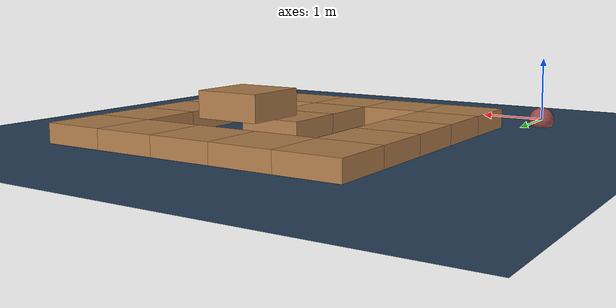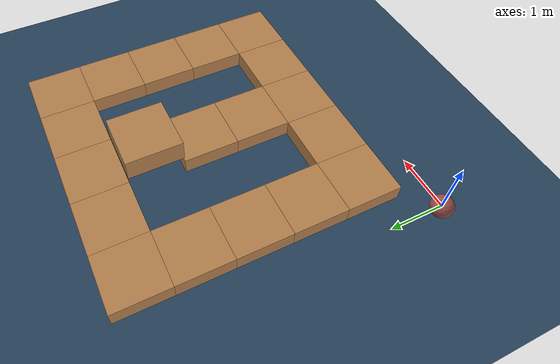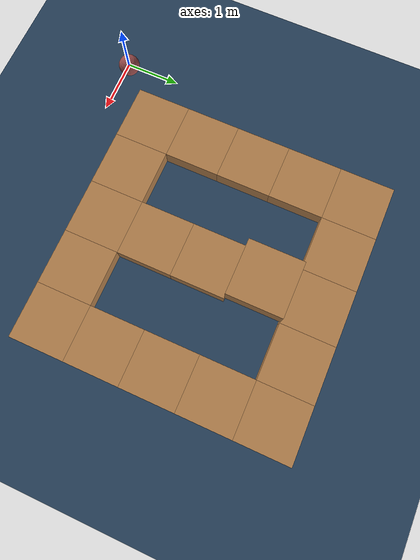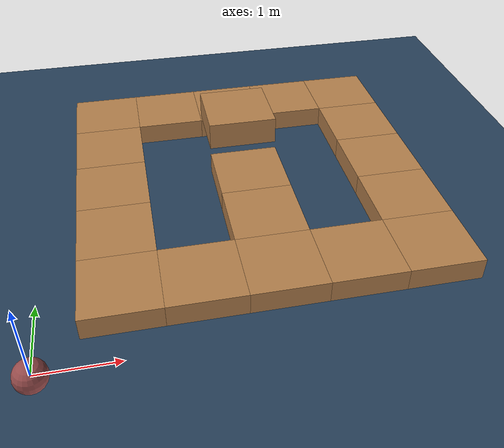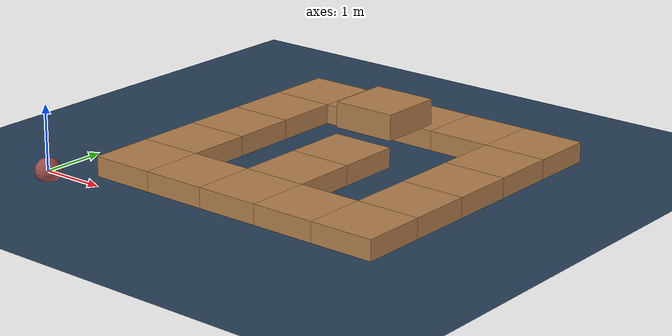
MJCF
<mujoco model="point_maze">
	<compiler inertiafromgeom="true" angle="radian" coordinate="local"/>
	<option timestep="0.01" gravity="0 0 0" iterations="20" integrator="Euler"/>
	<default >
		<joint damping="1" limited="false"/>
		<geom friction=".5 .1 .1" density="1000" margin="0.002" condim="1" contype="2" conaffinity="1"/>
	</default>
	<asset >
		<texture type="2d" name="groundplane" builtin="checker" rgb1="0.2 0.3 0.4" rgb2="0.1 0.2 0.3" width="100" height="100"/>
		<texture name="skybox" type="skybox" builtin="gradient" rgb1=".4 .6 .8" rgb2="0 0 0" width="800" height="800" mark="random" markrgb="1 1 1"/>
		<material name="groundplane" texture="groundplane" texrepeat="20 20"/>
		<material name="wall" rgba=".7 .5 .3 1"/>
		<material name="target" rgba=".6 .3 .3 1"/>
	</asset>
	<visual >
		<headlight ambient=".4 .4 .4" diffuse=".8 .8 .8" specular="0.1 0.1 0.1"/>
		<map znear="0.01"/>
		<quality shadowsize="2048"/>
	</visual>
	<worldbody >
		<geom name="ground" size="40 40 0.25" pos="0 0 -0.1" type="plane" contype="1" conaffinity="0" material="groundplane"/>
		<camera name="topview" pos="3.0 3.0 7" fovy="30" xyaxes="1 0 0 0 1 0"/>
		<body name="particle" pos="1.2 1.2 0">
			<geom name="particle_geom" type="sphere" size="0.1" rgba="0.0 0.0 1.0 0.0" contype="1"/>
			<site name="particle_site" pos="0.0 0.0 0" size="0.2" rgba="0.3 0.6 0.3 1"/>
			<joint name="ball_x" type="slide" pos="0 0 0" axis="1 0 0"/>
			<joint name="ball_y" type="slide" pos="0 0 0" axis="0 1 0"/>
		</body>
		<site name="target_site" pos="0.0 0.0 0" size="0.2" material="target"/>
		<geom conaffinity="1" type="box" name="wall_0_0" material="wall" pos="1.0 1.0 0" size="0.5 0.5 0.2"/>
		<geom conaffinity="1" type="box" name="wall_0_1" material="wall" pos="1.0 2.0 0" size="0.5 0.5 0.2"/>
		<geom conaffinity="1" type="box" name="wall_0_2" material="wall" pos="1.0 3.0 0" size="0.5 0.5 0.2"/>
		<geom conaffinity="1" type="box" name="wall_0_3" material="wall" pos="1.0 4.0 0" size="0.5 0.5 0.2"/>
		<geom conaffinity="1" type="box" name="wall_0_4" material="wall" pos="1.0 5.0 0" size="0.5 0.5 0.2"/>
		<geom conaffinity="1" type="box" name="wall_1_0" material="wall" pos="2.0 1.0 0" size="0.5 0.5 0.2"/>
		<geom conaffinity="1" type="box" name="wall_1_4" material="wall" pos="2.0 5.0 0" size="0.5 0.5 0.2"/>
		<geom conaffinity="1" type="box" name="wall_2_0" material="wall" pos="3.0 1.0 0" size="0.5 0.5 0.2"/>
		<geom conaffinity="1" type="box" name="wall_2_1" material="wall" pos="3.0 2.0 0" size="0.5 0.5 0.2"/>
		<geom conaffinity="1" type="box" name="wall_2_2" material="wall" pos="3.0 3.0 0" size="0.5 0.5 0.2"/>
		<geom conaffinity="1" type="box" name="wall_2_4" material="wall" pos="3.0 5.0 0" size="0.5 0.5 0.2"/>
		<geom conaffinity="1" type="box" name="wall_3_0" material="wall" pos="4.0 1.0 0" size="0.5 0.5 0.2"/>
		<geom conaffinity="1" type="box" name="wall_3_4" material="wall" pos="4.0 5.0 0" size="0.5 0.5 0.2"/>
		<geom conaffinity="1" type="box" name="wall_4_0" material="wall" pos="5.0 1.0 0" size="0.5 0.5 0.2"/>
		<geom conaffinity="1" type="box" name="wall_4_1" material="wall" pos="5.0 2.0 0" size="0.5 0.5 0.2"/>
		<geom conaffinity="1" type="box" name="wall_4_2" material="wall" pos="5.0 3.0 0" size="0.5 0.5 0.2"/>
		<geom conaffinity="1" type="box" name="wall_4_3" material="wall" pos="5.0 4.0 0" size="0.5 0.5 0.2"/>
		<geom conaffinity="1" type="box" name="wall_4_4" material="wall" pos="5.0 5.0 0" size="0.5 0.5 0.2"/>
		<geom conaffinity="1" type="box" name="obscure" material="wall" pos="3.0 4.0 0.5" size="0.5 0.5 0.2"/>
	</worldbody>
	<actuator >
		<motor joint="ball_x" ctrlrange="-1.0 1.0" ctrllimited="true" gear="100"/>
		<motor joint="ball_y" ctrlrange="-1.0 1.0" ctrllimited="true" gear="100"/>
	</actuator>
</mujoco>
